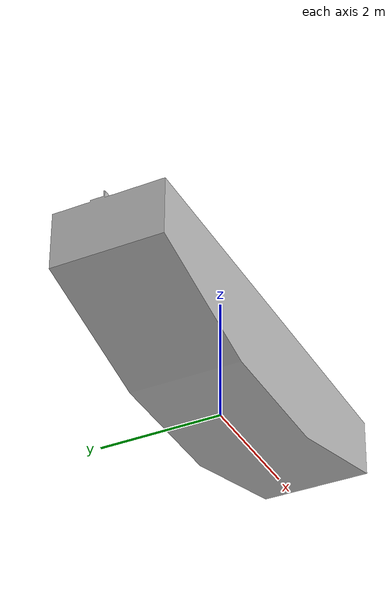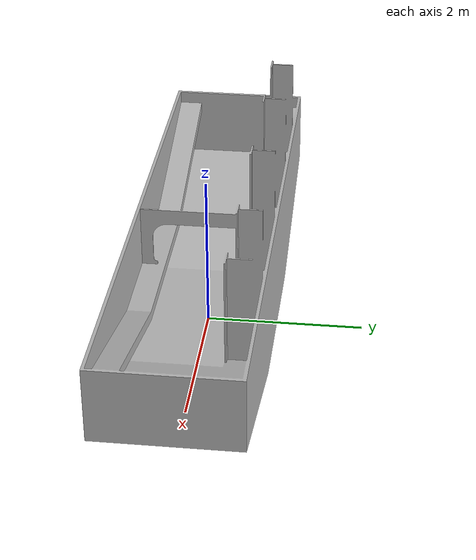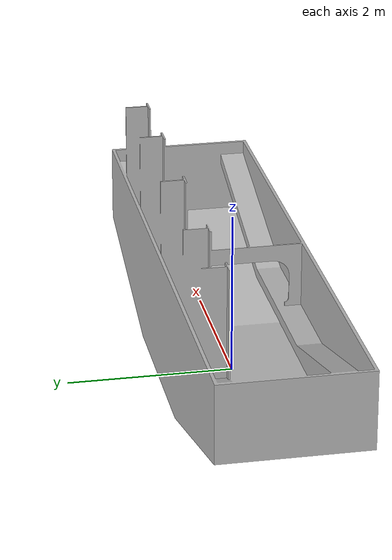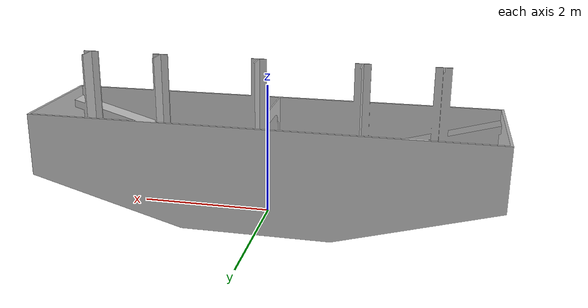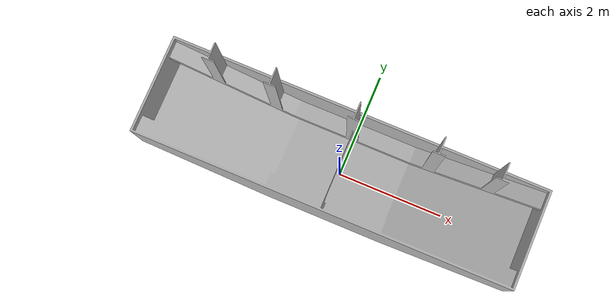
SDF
<?xml version="1.0" ?>
<sdf version="1.5">
    <model name="tank_no_lid">
        <static>true</static>
        <link name="tank_link">

            <visual name="tank">
                <pose>0 0 0 0 0 0</pose>
                <geometry>
                    <mesh><uri>model://tank_no_lid/meshes/tank_no_lid.stl</uri><scale>2 2 2</scale></mesh>
                </geometry>
                <material>Gazebo/Grey</material>
            </visual>

            <collision name="tank">
                <pose>0 0 0 0 0 0</pose>
                <geometry>
                    <mesh><uri>model://tank_no_lid/meshes/tank_no_lid.stl</uri><scale>2 2 2</scale></mesh>
                </geometry>
                <surface>
                    <friction>
                        <ode>
                            <mu>5</mu>
                            <mu2>5</mu2>
                        </ode>
                    </friction>
                </surface>
            </collision>

        </link>
    </model>
</sdf>
